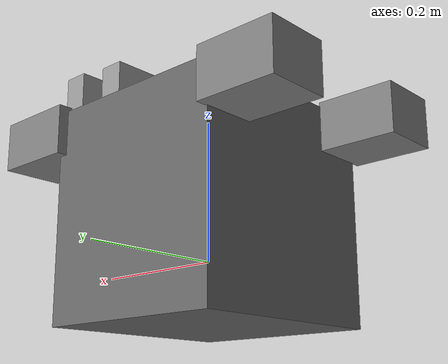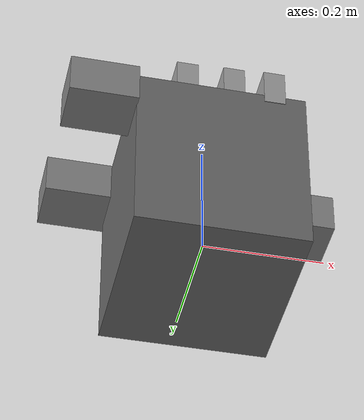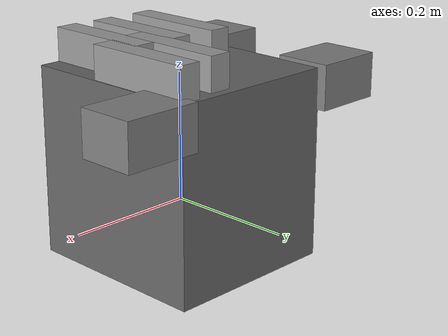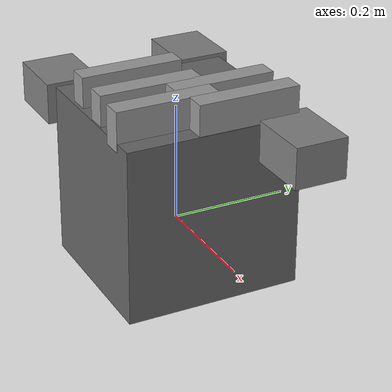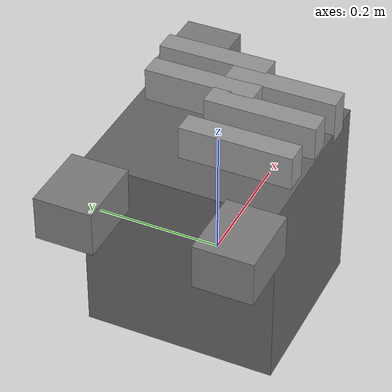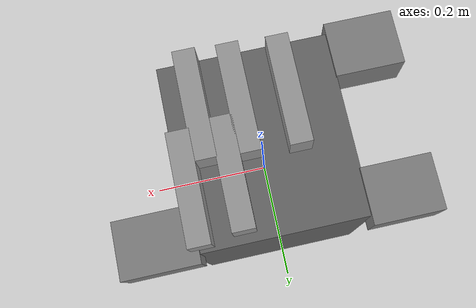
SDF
<?xml version='1.0'?>
<sdf version='1.6'>
  <model name='car_engine2'>
    <link name='body2'>
      <kinematic>1</kinematic>
      <pose frame=''>0 0 0.06 0 -0 0</pose>
      <self_collide>0</self_collide>
      <inertial>
        <pose frame=''>0 0 0 0 -0 0</pose>
        <inertia>
          <ixx>0.0225125</ixx>
          <ixy>0</ixy>
          <ixz>0</ixz>
          <iyy>0.0208956</iyy>
          <iyz>0</iyz>
          <izz>0.0210862</izz>
        </inertia>
        <mass>1.51354</mass>
      </inertial>
      <enable_wind>0</enable_wind>
      <visual name='visual'>
        <geometry>
          <box>
            <size>0.277813 0.3 0.29747</size>
          </box>
        </geometry>
        <material>
          <ambient>0.4 0.4 0.4 1</ambient>
          <diffuse>0.4 0.4 0.4 1</diffuse>
          <shader type='pixel'/>
          <script>
            <name>ModelPreview_1::body2::visual_MATERIAL_</name>
            <uri>__default__</uri>
          </script>
        </material>
        <pose frame=''>0 0 0 0 -0 0</pose>
        <transparency>0</transparency>
        <cast_shadows>1</cast_shadows>
      </visual>
      <collision name='collision'>
        <laser_retro>0</laser_retro>
        <max_contacts>10</max_contacts>
        <pose frame=''>0 0 0 0 -0 0</pose>
        <geometry>
          <box>
            <size>0.277813 0.3 0.29747</size>
          </box>
        </geometry>
        <surface>
          <friction>
            <ode>
              <mu>10</mu>
              <mu2>10</mu2>
              <fdir1>0 0 0</fdir1>
              <slip1>0</slip1>
              <slip2>0</slip2>
            </ode>
            <torsional>
              <coefficient>1</coefficient>
              <patch_radius>0</patch_radius>
              <surface_radius>0</surface_radius>
              <use_patch_radius>1</use_patch_radius>
              <ode>
                <slip>0</slip>
              </ode>
            </torsional>
          </friction>
          <bounce>
            <restitution_coefficient>0</restitution_coefficient>
            <threshold>1e+06</threshold>
          </bounce>
          <contact>
            <collide_without_contact>0</collide_without_contact>
            <collide_without_contact_bitmask>1</collide_without_contact_bitmask>
            <collide_bitmask>1</collide_bitmask>
            <ode>
              <soft_cfm>0</soft_cfm>
              <soft_erp>0.2</soft_erp>
              <kp>1e+13</kp>
              <kd>1</kd>
              <max_vel>0.01</max_vel>
              <min_depth>0</min_depth>
            </ode>
            <bullet>
              <split_impulse>1</split_impulse>
              <split_impulse_penetration_threshold>-0.01</split_impulse_penetration_threshold>
              <soft_cfm>0</soft_cfm>
              <soft_erp>0.2</soft_erp>
              <kp>1e+13</kp>
              <kd>1</kd>
            </bullet>
          </contact>
        </surface>
      </collision>
    </link>
    <link name='lift_tab1'>
      <kinematic>1</kinematic>
      <pose frame=''>0.186516 0.12 0.18 0 -0 0</pose>
      <self_collide>0</self_collide>
      <inertial>
        <pose frame=''>0 0 0 0 -0 0</pose>
        <inertia>
          <ixx>0.00131365</ixx>
          <ixy>0</ixy>
          <ixz>0</ixz>
          <iyy>0.00198104</iyy>
          <iyz>0</iyz>
          <izz>0.0023044</izz>
        </inertia>
        <mass>1.2126</mass>
      </inertial>
      <enable_wind>0</enable_wind>
      <visual name='visual'>
        <geometry>
          <box>
            <size>0.121263 0.09 0.07</size>
          </box>
        </geometry>
        <material>
          <ambient>0.5 0.5 0.5 1</ambient>
          <diffuse>0.5 0.5 0.5 1</diffuse>
          <shader type='pixel'/>
          <script>
            <name>ModelPreview_1::lift_tab1::visual_MATERIAL_</name>
            <uri>__default__</uri>
          </script>
        </material>
        <pose frame=''>0 0 0 0 -0 0</pose>
        <transparency>0</transparency>
        <cast_shadows>1</cast_shadows>
      </visual>
      <collision name='collision'>
        <laser_retro>0</laser_retro>
        <max_contacts>10</max_contacts>
        <pose frame=''>0 0 0 0 -0 0</pose>
        <geometry>
          <box>
            <size>0.121263 0.09 0.07</size>
          </box>
        </geometry>
        <surface>
          <friction>
            <ode>
              <mu>10</mu>
              <mu2>10</mu2>
              <fdir1>0 0 0</fdir1>
              <slip1>0</slip1>
              <slip2>0</slip2>
            </ode>
            <torsional>
              <coefficient>1</coefficient>
              <patch_radius>0</patch_radius>
              <surface_radius>0</surface_radius>
              <use_patch_radius>1</use_patch_radius>
              <ode>
                <slip>0</slip>
              </ode>
            </torsional>
          </friction>
          <bounce>
            <restitution_coefficient>0</restitution_coefficient>
            <threshold>1e+06</threshold>
          </bounce>
          <contact>
            <collide_without_contact>0</collide_without_contact>
            <collide_without_contact_bitmask>1</collide_without_contact_bitmask>
            <collide_bitmask>1</collide_bitmask>
            <ode>
              <soft_cfm>0</soft_cfm>
              <soft_erp>0.2</soft_erp>
              <kp>1e+13</kp>
              <kd>1</kd>
              <max_vel>0.01</max_vel>
              <min_depth>0</min_depth>
            </ode>
            <bullet>
              <split_impulse>1</split_impulse>
              <split_impulse_penetration_threshold>-0.01</split_impulse_penetration_threshold>
              <soft_cfm>0</soft_cfm>
              <soft_erp>0.2</soft_erp>
              <kp>1e+13</kp>
              <kd>1</kd>
            </bullet>
          </contact>
        </surface>
      </collision>
    </link>
    <link name='lift_tab3'>
      <kinematic>1</kinematic>
      <pose frame=''>-0.192344 0.120572 0.18 0 -0 0</pose>
      <self_collide>0</self_collide>
      <inertial>
        <pose frame=''>0 0 0 0 -0 0</pose>
        <inertia>
          <ixx>0.0012125</ixx>
          <ixy>0</ixy>
          <ixz>0</ixz>
          <iyy>0.00162543</iyy>
          <iyz>0</iyz>
          <izz>0.00192389</izz>
        </inertia>
        <mass>1.11923</mass>
      </inertial>
      <enable_wind>0</enable_wind>
      <visual name='visual'>
        <geometry>
          <box>
            <size>0.111926 0.09 0.07</size>
          </box>
        </geometry>
        <material>
          <ambient>0.5 0.5 0.5 1</ambient>
          <diffuse>0.5 0.5 0.5 1</diffuse>
          <shader type='pixel'/>
          <script>
            <name>ModelPreview_1::lift_tab3::visual_MATERIAL_</name>
            <uri>__default__</uri>
          </script>
        </material>
        <pose frame=''>0 0 0 0 -0 0</pose>
        <transparency>0</transparency>
        <cast_shadows>1</cast_shadows>
      </visual>
      <collision name='collision'>
        <laser_retro>0</laser_retro>
        <max_contacts>10</max_contacts>
        <pose frame=''>0 0 0 0 -0 0</pose>
        <geometry>
          <box>
            <size>0.111926 0.09 0.07</size>
          </box>
        </geometry>
        <surface>
          <friction>
            <ode>
              <mu>10</mu>
              <mu2>10</mu2>
              <fdir1>0 0 0</fdir1>
              <slip1>0</slip1>
              <slip2>0</slip2>
            </ode>
            <torsional>
              <coefficient>1</coefficient>
              <patch_radius>0</patch_radius>
              <surface_radius>0</surface_radius>
              <use_patch_radius>1</use_patch_radius>
              <ode>
                <slip>0</slip>
              </ode>
            </torsional>
          </friction>
          <bounce>
            <restitution_coefficient>0</restitution_coefficient>
            <threshold>1e+06</threshold>
          </bounce>
          <contact>
            <collide_without_contact>0</collide_without_contact>
            <collide_without_contact_bitmask>1</collide_without_contact_bitmask>
            <collide_bitmask>1</collide_bitmask>
            <ode>
              <soft_cfm>0</soft_cfm>
              <soft_erp>0.2</soft_erp>
              <kp>1e+13</kp>
              <kd>1</kd>
              <max_vel>0.01</max_vel>
              <min_depth>0</min_depth>
            </ode>
            <bullet>
              <split_impulse>1</split_impulse>
              <split_impulse_penetration_threshold>-0.01</split_impulse_penetration_threshold>
              <soft_cfm>0</soft_cfm>
              <soft_erp>0.2</soft_erp>
              <kp>1e+13</kp>
              <kd>1</kd>
            </bullet>
          </contact>
        </surface>
      </collision>
    </link>
    <link name='lift_tab4'>
      <kinematic>1</kinematic>
      <pose frame=''>-0.193009 -0.12 0.18 0 -0 0</pose>
      <self_collide>0</self_collide>
      <inertial>
        <pose frame=''>0 0 0 0 -0 0</pose>
        <inertia>
          <ixx>0.00120403</ixx>
          <ixy>0</ixy>
          <ixz>0</ixz>
          <iyy>0.00159766</iyy>
          <iyz>0</iyz>
          <izz>0.00189403</izz>
        </inertia>
        <mass>1.11141</mass>
      </inertial>
      <enable_wind>0</enable_wind>
      <visual name='visual'>
        <geometry>
          <box>
            <size>0.111131 0.09 0.07</size>
          </box>
        </geometry>
        <material>
          <ambient>0.5 0.5 0.5 1</ambient>
          <diffuse>0.5 0.5 0.5 1</diffuse>
          <shader type='pixel'/>
          <script>
            <name>ModelPreview_1::lift_tab4::visual_MATERIAL_</name>
            <uri>__default__</uri>
          </script>
        </material>
        <pose frame=''>0 0 0 0 -0 0</pose>
        <transparency>0</transparency>
        <cast_shadows>1</cast_shadows>
      </visual>
      <collision name='collision'>
        <laser_retro>0</laser_retro>
        <max_contacts>10</max_contacts>
        <pose frame=''>0 0 0 0 -0 0</pose>
        <geometry>
          <box>
            <size>0.111131 0.09 0.07</size>
          </box>
        </geometry>
        <surface>
          <friction>
            <ode>
              <mu>10</mu>
              <mu2>10</mu2>
              <fdir1>0 0 0</fdir1>
              <slip1>0</slip1>
              <slip2>0</slip2>
            </ode>
            <torsional>
              <coefficient>1</coefficient>
              <patch_radius>0</patch_radius>
              <surface_radius>0</surface_radius>
              <use_patch_radius>1</use_patch_radius>
              <ode>
                <slip>0</slip>
              </ode>
            </torsional>
          </friction>
          <bounce>
            <restitution_coefficient>0</restitution_coefficient>
            <threshold>1e+06</threshold>
          </bounce>
          <contact>
            <collide_without_contact>0</collide_without_contact>
            <collide_without_contact_bitmask>1</collide_without_contact_bitmask>
            <collide_bitmask>1</collide_bitmask>
            <ode>
              <soft_cfm>0</soft_cfm>
              <soft_erp>0.2</soft_erp>
              <kp>1e+13</kp>
              <kd>1</kd>
              <max_vel>0.01</max_vel>
              <min_depth>0</min_depth>
            </ode>
            <bullet>
              <split_impulse>1</split_impulse>
              <split_impulse_penetration_threshold>-0.01</split_impulse_penetration_threshold>
              <soft_cfm>0</soft_cfm>
              <soft_erp>0.2</soft_erp>
              <kp>1e+13</kp>
              <kd>1</kd>
            </bullet>
          </contact>
        </surface>
      </collision>
    </link>
    <link name='link_0'>
      <kinematic>1</kinematic>
      <inertial>
        <mass>0.000407117</mass>
        <inertia>
          <ixx>1.90561e-07</ixx>
          <ixy>0</ixy>
          <ixz>0</ixz>
          <iyy>1.16678e-06</iyy>
          <iyz>0</iyz>
          <izz>1.06079e-06</izz>
        </inertia>
        <pose frame=''>0 0 0 0 -0 0</pose>
      </inertial>
      <pose frame=''>0.119961 0.057644 0.227737 0 -0 1.5708</pose>
      <visual name='visual'>
        <pose frame=''>0 0 0 0 -0 0</pose>
        <geometry>
          <box>
            <size>0.173266 0.035305 0.066109</size>
          </box>
        </geometry>
        <material>
          <lighting>1</lighting>
          <script>
            <uri>file://media/materials/scripts/gazebo.material</uri>
            <name>Gazebo/Grey</name>
          </script>
          <shader type='pixel'/>
        </material>
        <transparency>0</transparency>
        <cast_shadows>1</cast_shadows>
      </visual>
      <collision name='collision'>
        <laser_retro>0</laser_retro>
        <max_contacts>10</max_contacts>
        <pose frame=''>0 0 0 0 -0 0</pose>
        <geometry>
          <box>
            <size>0.173266 0.035305 0.066109</size>
          </box>
        </geometry>
        <surface>
          <friction>
            <ode>
              <mu>10</mu>
              <mu2>10</mu2>
              <fdir1>0 0 0</fdir1>
              <slip1>0</slip1>
              <slip2>0</slip2>
            </ode>
            <torsional>
              <coefficient>1</coefficient>
              <patch_radius>0</patch_radius>
              <surface_radius>0</surface_radius>
              <use_patch_radius>1</use_patch_radius>
              <ode>
                <slip>0</slip>
              </ode>
            </torsional>
          </friction>
          <bounce>
            <restitution_coefficient>0</restitution_coefficient>
            <threshold>1e+06</threshold>
          </bounce>
          <contact>
            <collide_without_contact>0</collide_without_contact>
            <collide_without_contact_bitmask>1</collide_without_contact_bitmask>
            <collide_bitmask>1</collide_bitmask>
            <ode>
              <soft_cfm>0</soft_cfm>
              <soft_erp>0.2</soft_erp>
              <kp>1e+13</kp>
              <kd>1</kd>
              <max_vel>0.01</max_vel>
              <min_depth>0</min_depth>
            </ode>
            <bullet>
              <split_impulse>1</split_impulse>
              <split_impulse_penetration_threshold>-0.01</split_impulse_penetration_threshold>
              <soft_cfm>0</soft_cfm>
              <soft_erp>0.2</soft_erp>
              <kp>1e+13</kp>
              <kd>1</kd>
            </bullet>
          </contact>
        </surface>
      </collision>
    </link>
    <link name='link_0_clone'>
      <kinematic>1</kinematic>
      <inertial>
        <mass>0.000407117</mass>
        <inertia>
          <ixx>1.90561e-07</ixx>
          <ixy>0</ixy>
          <ixz>0</ixz>
          <iyy>1.16678e-06</iyy>
          <iyz>0</iyz>
          <izz>1.06079e-06</izz>
        </inertia>
        <pose frame=''>0 0 0 0 -0 0</pose>
      </inertial>
      <pose frame=''>0.087608 -0.064354 0.227737 0 -0 1.5708</pose>
      <visual name='visual'>
        <pose frame=''>0 0 0 0 -0 0</pose>
        <geometry>
          <box>
            <size>0.173266 0.035305 0.066109</size>
          </box>
        </geometry>
        <material>
          <lighting>1</lighting>
          <script>
            <uri>file://media/materials/scripts/gazebo.material</uri>
            <name>Gazebo/Grey</name>
          </script>
          <shader type='pixel'/>
        </material>
        <transparency>0</transparency>
        <cast_shadows>1</cast_shadows>
      </visual>
      <collision name='collision'>
        <laser_retro>0</laser_retro>
        <max_contacts>10</max_contacts>
        <pose frame=''>0 0 0 0 -0 0</pose>
        <geometry>
          <box>
            <size>0.173266 0.035305 0.066109</size>
          </box>
        </geometry>
        <surface>
          <friction>
            <ode>
              <mu>10</mu>
              <mu2>10</mu2>
              <fdir1>0 0 0</fdir1>
              <slip1>0</slip1>
              <slip2>0</slip2>
            </ode>
            <torsional>
              <coefficient>1</coefficient>
              <patch_radius>0</patch_radius>
              <surface_radius>0</surface_radius>
              <use_patch_radius>1</use_patch_radius>
              <ode>
                <slip>0</slip>
              </ode>
            </torsional>
          </friction>
          <bounce>
            <restitution_coefficient>0</restitution_coefficient>
            <threshold>1e+06</threshold>
          </bounce>
          <contact>
            <collide_without_contact>0</collide_without_contact>
            <collide_without_contact_bitmask>1</collide_without_contact_bitmask>
            <collide_bitmask>1</collide_bitmask>
            <ode>
              <soft_cfm>0</soft_cfm>
              <soft_erp>0.2</soft_erp>
              <kp>1e+13</kp>
              <kd>1</kd>
              <max_vel>0.01</max_vel>
              <min_depth>0</min_depth>
            </ode>
            <bullet>
              <split_impulse>1</split_impulse>
              <split_impulse_penetration_threshold>-0.01</split_impulse_penetration_threshold>
              <soft_cfm>0</soft_cfm>
              <soft_erp>0.2</soft_erp>
              <kp>1e+13</kp>
              <kd>1</kd>
            </bullet>
          </contact>
        </surface>
      </collision>
    </link>
    <link name='link_0_clone_0'>
      <kinematic>1</kinematic>
      <inertial>
        <mass>0.000407117</mass>
        <inertia>
          <ixx>1.90561e-07</ixx>
          <ixy>0</ixy>
          <ixz>0</ixz>
          <iyy>1.16678e-06</iyy>
          <iyz>0</iyz>
          <izz>1.06079e-06</izz>
        </inertia>
        <pose frame=''>0 0 0 0 -0 0</pose>
      </inertial>
      <pose frame=''>0.053838 0.049069 0.227737 0 0 -1.57079</pose>
      <visual name='visual'>
        <pose frame=''>0 0 0 0 -0 0</pose>
        <geometry>
          <box>
            <size>0.173266 0.035305 0.066109</size>
          </box>
        </geometry>
        <material>
          <lighting>1</lighting>
          <script>
            <uri>file://media/materials/scripts/gazebo.material</uri>
            <name>Gazebo/Grey</name>
          </script>
          <shader type='pixel'/>
        </material>
        <transparency>0</transparency>
        <cast_shadows>1</cast_shadows>
      </visual>
      <collision name='collision'>
        <laser_retro>0</laser_retro>
        <max_contacts>10</max_contacts>
        <pose frame=''>0 0 0 0 -0 0</pose>
        <geometry>
          <box>
            <size>0.173266 0.035305 0.066109</size>
          </box>
        </geometry>
        <surface>
          <friction>
            <ode>
              <mu>10</mu>
              <mu2>10</mu2>
              <fdir1>0 0 0</fdir1>
              <slip1>0</slip1>
              <slip2>0</slip2>
            </ode>
            <torsional>
              <coefficient>1</coefficient>
              <patch_radius>0</patch_radius>
              <surface_radius>0</surface_radius>
              <use_patch_radius>1</use_patch_radius>
              <ode>
                <slip>0</slip>
              </ode>
            </torsional>
          </friction>
          <bounce>
            <restitution_coefficient>0</restitution_coefficient>
            <threshold>1e+06</threshold>
          </bounce>
          <contact>
            <collide_without_contact>0</collide_without_contact>
            <collide_without_contact_bitmask>1</collide_without_contact_bitmask>
            <collide_bitmask>1</collide_bitmask>
            <ode>
              <soft_cfm>0</soft_cfm>
              <soft_erp>0.2</soft_erp>
              <kp>1e+13</kp>
              <kd>1</kd>
              <max_vel>0.01</max_vel>
              <min_depth>0</min_depth>
            </ode>
            <bullet>
              <split_impulse>1</split_impulse>
              <split_impulse_penetration_threshold>-0.01</split_impulse_penetration_threshold>
              <soft_cfm>0</soft_cfm>
              <soft_erp>0.2</soft_erp>
              <kp>1e+13</kp>
              <kd>1</kd>
            </bullet>
          </contact>
        </surface>
      </collision>
    </link>
    <link name='link_0_clone_1'>
      <kinematic>1</kinematic>
      <inertial>
        <mass>0.000407117</mass>
        <inertia>
          <ixx>1.90561e-07</ixx>
          <ixy>0</ixy>
          <ixz>0</ixz>
          <iyy>1.16678e-06</iyy>
          <iyz>0</iyz>
          <izz>1.06079e-06</izz>
        </inertia>
        <pose frame=''>0 0 0 0 -0 0</pose>
      </inertial>
      <pose frame=''>-0.055251 -0.057549 0.227737 0 -0 1.5708</pose>
      <visual name='visual'>
        <pose frame=''>0 0 0 0 -0 0</pose>
        <geometry>
          <box>
            <size>0.173266 0.035305 0.066109</size>
          </box>
        </geometry>
        <material>
          <lighting>1</lighting>
          <script>
            <uri>file://media/materials/scripts/gazebo.material</uri>
            <name>Gazebo/Grey</name>
          </script>
          <shader type='pixel'/>
        </material>
        <transparency>0</transparency>
        <cast_shadows>1</cast_shadows>
      </visual>
      <collision name='collision'>
        <laser_retro>0</laser_retro>
        <max_contacts>10</max_contacts>
        <pose frame=''>0 0 0 0 -0 0</pose>
        <geometry>
          <box>
            <size>0.173266 0.035305 0.066109</size>
          </box>
        </geometry>
        <surface>
          <friction>
            <ode>
              <mu>10</mu>
              <mu2>10</mu2>
              <fdir1>0 0 0</fdir1>
              <slip1>0</slip1>
              <slip2>0</slip2>
            </ode>
            <torsional>
              <coefficient>1</coefficient>
              <patch_radius>0</patch_radius>
              <surface_radius>0</surface_radius>
              <use_patch_radius>1</use_patch_radius>
              <ode>
                <slip>0</slip>
              </ode>
            </torsional>
          </friction>
          <bounce>
            <restitution_coefficient>0</restitution_coefficient>
            <threshold>1e+06</threshold>
          </bounce>
          <contact>
            <collide_without_contact>0</collide_without_contact>
            <collide_without_contact_bitmask>1</collide_without_contact_bitmask>
            <collide_bitmask>1</collide_bitmask>
            <ode>
              <soft_cfm>0</soft_cfm>
              <soft_erp>0.2</soft_erp>
              <kp>1e+13</kp>
              <kd>1</kd>
              <max_vel>0.01</max_vel>
              <min_depth>0</min_depth>
            </ode>
            <bullet>
              <split_impulse>1</split_impulse>
              <split_impulse_penetration_threshold>-0.01</split_impulse_penetration_threshold>
              <soft_cfm>0</soft_cfm>
              <soft_erp>0.2</soft_erp>
              <kp>1e+13</kp>
              <kd>1</kd>
            </bullet>
          </contact>
        </surface>
      </collision>
    </link>
    <link name='link_0_clone_2'>
      <kinematic>1</kinematic>
      <inertial>
        <mass>0.000407117</mass>
        <inertia>
          <ixx>1.90561e-07</ixx>
          <ixy>0</ixy>
          <ixz>0</ixz>
          <iyy>1.16678e-06</iyy>
          <iyz>0</iyz>
          <izz>1.06079e-06</izz>
        </inertia>
        <pose frame=''>0 0 0 0 -0 0</pose>
      </inertial>
      <pose frame=''>0.021378 -0.060936 0.227737 0 -0 1.5708</pose>
      <visual name='visual'>
        <pose frame=''>0 0 0 0 -0 0</pose>
        <geometry>
          <box>
            <size>0.173266 0.035305 0.066109</size>
          </box>
        </geometry>
        <material>
          <lighting>1</lighting>
          <script>
            <uri>file://media/materials/scripts/gazebo.material</uri>
            <name>Gazebo/Grey</name>
          </script>
          <shader type='pixel'/>
        </material>
        <transparency>0</transparency>
        <cast_shadows>1</cast_shadows>
      </visual>
      <collision name='collision'>
        <laser_retro>0</laser_retro>
        <max_contacts>10</max_contacts>
        <pose frame=''>0 0 0 0 -0 0</pose>
        <geometry>
          <box>
            <size>0.173266 0.035305 0.066109</size>
          </box>
        </geometry>
        <surface>
          <friction>
            <ode>
              <mu>10</mu>
              <mu2>10</mu2>
              <fdir1>0 0 0</fdir1>
              <slip1>0</slip1>
              <slip2>0</slip2>
            </ode>
            <torsional>
              <coefficient>1</coefficient>
              <patch_radius>0</patch_radius>
              <surface_radius>0</surface_radius>
              <use_patch_radius>1</use_patch_radius>
              <ode>
                <slip>0</slip>
              </ode>
            </torsional>
          </friction>
          <bounce>
            <restitution_coefficient>0</restitution_coefficient>
            <threshold>1e+06</threshold>
          </bounce>
          <contact>
            <collide_without_contact>0</collide_without_contact>
            <collide_without_contact_bitmask>1</collide_without_contact_bitmask>
            <collide_bitmask>1</collide_bitmask>
            <ode>
              <soft_cfm>0</soft_cfm>
              <soft_erp>0.2</soft_erp>
              <kp>1e+13</kp>
              <kd>1</kd>
              <max_vel>0.01</max_vel>
              <min_depth>0</min_depth>
            </ode>
            <bullet>
              <split_impulse>1</split_impulse>
              <split_impulse_penetration_threshold>-0.01</split_impulse_penetration_threshold>
              <soft_cfm>0</soft_cfm>
              <soft_erp>0.2</soft_erp>
              <kp>1e+13</kp>
              <kd>1</kd>
            </bullet>
          </contact>
        </surface>
      </collision>
    </link>
    <static>0</static>
    <allow_auto_disable>1</allow_auto_disable>
  </model>
</sdf>
